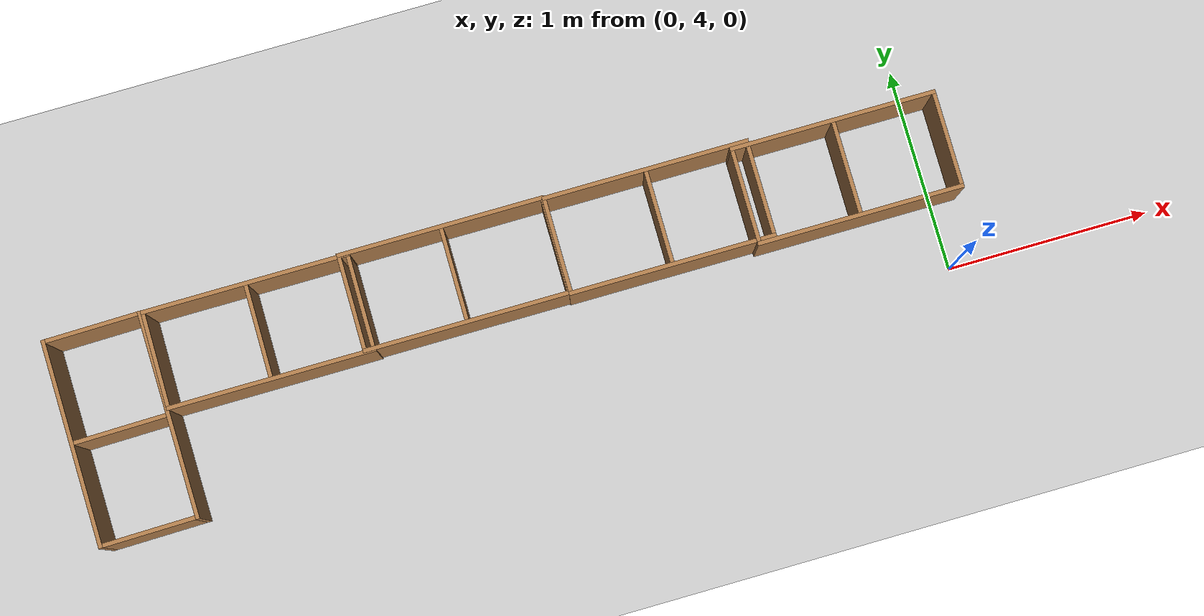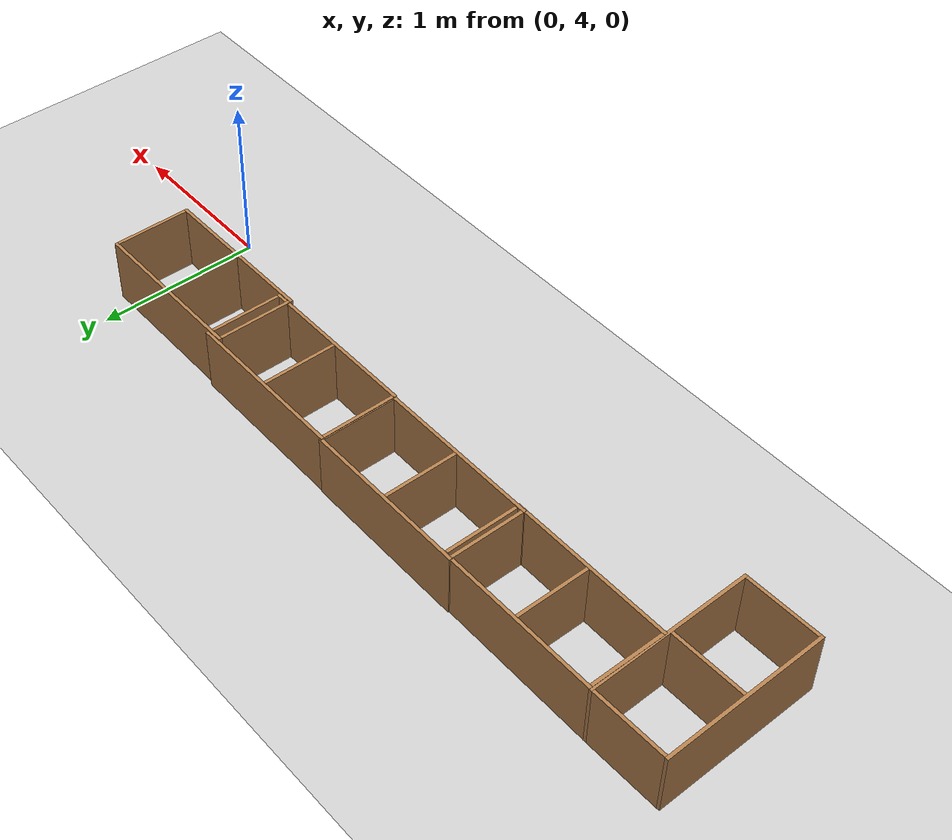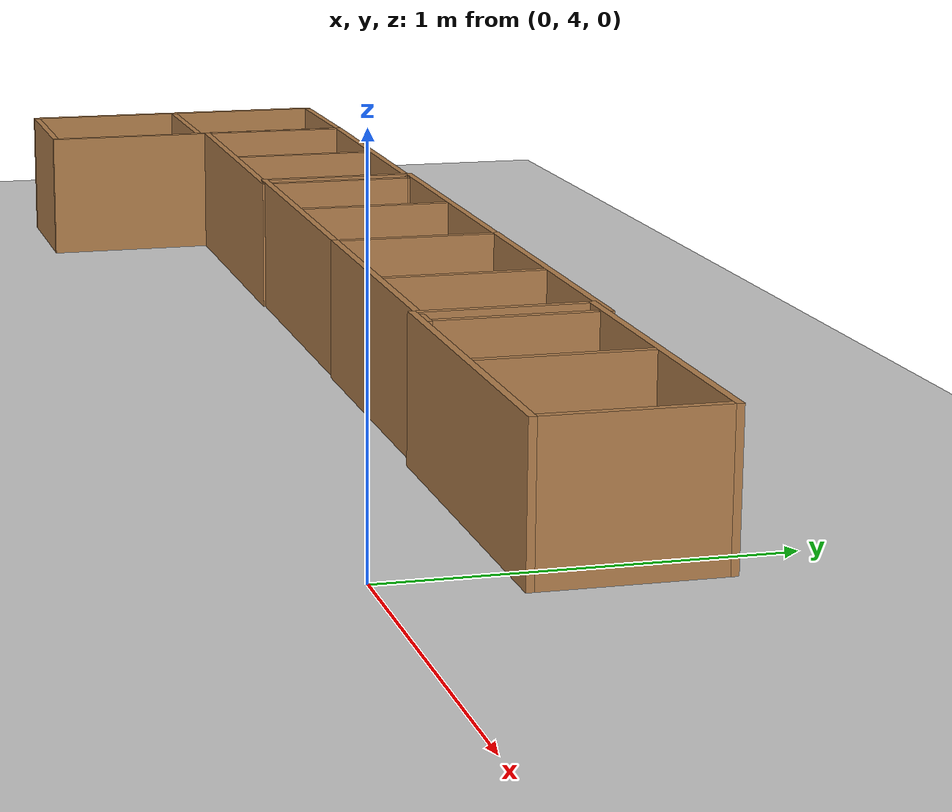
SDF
<sdf version="1.7">
 <world name="default">
  <model name="ground_plane">
   <static>1</static>
   <link name="link">
    <collision name="collision">
     <geometry><plane><normal>0 0 1</normal><size>100 100</size></plane></geometry>
     <surface>
      <contact><collide_bitmask>65535</collide_bitmask></contact>
      <friction><ode><mu>100</mu><mu2>50</mu2></ode></friction>
     </surface>
    </collision>
    <visual name="visual">
     <cast_shadows>0</cast_shadows>
     <geometry><plane><normal>0 0 1</normal><size>100 100</size></plane></geometry>
     <material>
      <script><uri>file://media/materials/scripts/gazebo.material</uri><name>Gazebo/Grey</name></script>
     </material>
    </visual>
   </link>
  </model>
  <model name="cabinet_clone_5_clone_4">
   <static>1</static>
   <link name="cabinet_bottom_plate">
    <inertial>
     <pose>0 0 -1 0 -0 0</pose>
     <inertia><ixx>2.05</ixx><ixy>0</ixy><ixz>0</ixz><iyy>2.05</iyy><iyz>0</iyz><izz>2.05</izz></inertia>
     <mass>25</mass>
    </inertial>
    <collision name="cabinet_bottom_plate_geom">
     <pose>0 0 0.01 0 -0 0</pose>
     <geometry><box><size>0.45 0.45 0.02</size></box></geometry>
    </collision>
    <visual name="cabinet_bottom_plate_geom_visual">
     <pose>0 0 0.01 0 -0 0</pose>
     <geometry><box><size>0.45 0.45 0.02</size></box></geometry>
     <material>
      <script><uri>file://media/materials/scripts/gazebo.material</uri><name>Gazebo/Wood</name></script>
     </material>
    </visual>
    <collision name="cabinet_bottom_plate_geom_cabinet_back_plate">
     <pose>0.235 0 0.51 0 -0 0</pose>
     <geometry><box><size>0.02 0.45 1.02</size></box></geometry>
    </collision>
    <visual name="cabinet_bottom_plate_geom_cabinet_back_plate_visual">
     <pose>0.235 0 0.51 0 -0 0</pose>
     <geometry><box><size>0.02 0.45 1.02</size></box></geometry>
     <material>
      <script><uri>file://media/materials/scripts/gazebo.material</uri><name>Gazebo/Wood</name></script>
     </material>
    </visual>
    <collision name="cabinet_bottom_plate_geom_cabinet_left_plate">
     <pose>0 0.235 0.51 0 -0 0</pose>
     <geometry><box><size>0.45 0.02 1.02</size></box></geometry>
    </collision>
    <visual name="cabinet_bottom_plate_geom_cabinet_left_plate_visual">
     <pose>0 0.235 0.51 0 -0 0</pose>
     <geometry><box><size>0.45 0.02 1.02</size></box></geometry>
     <material>
      <script><uri>file://media/materials/scripts/gazebo.material</uri><name>Gazebo/Wood</name></script>
     </material>
    </visual>
    <collision name="cabinet_bottom_plate_geom_cabinet_middle_plate">
     <pose>0 0 0.51 0 -0 0</pose>
     <geometry><box><size>0.45 0.45 0.02</size></box></geometry>
    </collision>
    <visual name="cabinet_bottom_plate_geom_cabinet_middle_plate_visual">
     <pose>0 0 0.51 0 -0 0</pose>
     <geometry><box><size>0.45 0.45 0.02</size></box></geometry>
     <material>
      <script><uri>file://media/materials/scripts/gazebo.material</uri><name>Gazebo/Wood</name></script>
     </material>
    </visual>
    <collision name="cabinet_bottom_plate_geom_cabinet_right_plate">
     <pose>0 -0.235 0.51 0 -0 0</pose>
     <geometry><box><size>0.45 0.02 1.02</size></box></geometry>
    </collision>
    <visual name="cabinet_bottom_plate_geom_cabinet_right_plate_visual">
     <pose>0 -0.235 0.51 0 -0 0</pose>
     <geometry><box><size>0.45 0.02 1.02</size></box></geometry>
     <material>
      <script><uri>file://media/materials/scripts/gazebo.material</uri><name>Gazebo/Wood</name></script>
     </material>
    </visual>
    <collision name="cabinet_bottom_plate_geom_cabinet_top_plate">
     <pose>0 0 1.01 0 -0 0</pose>
     <geometry><box><size>0.45 0.45 0.02</size></box></geometry>
    </collision>
    <visual name="cabinet_bottom_plate_geom_cabinet_top_plate_visual">
     <pose>0 0 1.01 0 -0 0</pose>
     <geometry><box><size>0.45 0.45 0.02</size></box></geometry>
     <material>
      <script><uri>file://media/materials/scripts/gazebo.material</uri><name>Gazebo/Wood</name></script>
     </material>
    </visual>
   </link>
   <pose>-4.00717 3.80501 0.169718 1.55548 1.5658 -3.14159</pose>
  </model>
  <model name="cabinet_clone_0_clone">
   <static>1</static>
   <link name="cabinet_bottom_plate">
    <inertial>
     <pose>0 0 -1 0 -0 0</pose>
     <inertia><ixx>2.05</ixx><ixy>0</ixy><ixz>0</ixz><iyy>2.05</iyy><iyz>0</iyz><izz>2.05</izz></inertia>
     <mass>25</mass>
    </inertial>
    <collision name="cabinet_bottom_plate_geom">
     <pose>0 0 0.01 0 -0 0</pose>
     <geometry><box><size>0.45 0.45 0.02</size></box></geometry>
    </collision>
    <visual name="cabinet_bottom_plate_geom_visual">
     <pose>0 0 0.01 0 -0 0</pose>
     <geometry><box><size>0.45 0.45 0.02</size></box></geometry>
     <material>
      <script><uri>file://media/materials/scripts/gazebo.material</uri><name>Gazebo/Wood</name></script>
     </material>
    </visual>
    <collision name="cabinet_bottom_plate_geom_cabinet_back_plate">
     <pose>0.235 0 0.51 0 -0 0</pose>
     <geometry><box><size>0.02 0.45 1.02</size></box></geometry>
    </collision>
    <visual name="cabinet_bottom_plate_geom_cabinet_back_plate_visual">
     <pose>0.235 0 0.51 0 -0 0</pose>
     <geometry><box><size>0.02 0.45 1.02</size></box></geometry>
     <material>
      <script><uri>file://media/materials/scripts/gazebo.material</uri><name>Gazebo/Wood</name></script>
     </material>
    </visual>
    <collision name="cabinet_bottom_plate_geom_cabinet_left_plate">
     <pose>0 0.235 0.51 0 -0 0</pose>
     <geometry><box><size>0.45 0.02 1.02</size></box></geometry>
    </collision>
    <visual name="cabinet_bottom_plate_geom_cabinet_left_plate_visual">
     <pose>0 0.235 0.51 0 -0 0</pose>
     <geometry><box><size>0.45 0.02 1.02</size></box></geometry>
     <material>
      <script><uri>file://media/materials/scripts/gazebo.material</uri><name>Gazebo/Wood</name></script>
     </material>
    </visual>
    <collision name="cabinet_bottom_plate_geom_cabinet_middle_plate">
     <pose>0 0 0.51 0 -0 0</pose>
     <geometry><box><size>0.45 0.45 0.02</size></box></geometry>
    </collision>
    <visual name="cabinet_bottom_plate_geom_cabinet_middle_plate_visual">
     <pose>0 0 0.51 0 -0 0</pose>
     <geometry><box><size>0.45 0.45 0.02</size></box></geometry>
     <material>
      <script><uri>file://media/materials/scripts/gazebo.material</uri><name>Gazebo/Wood</name></script>
     </material>
    </visual>
    <collision name="cabinet_bottom_plate_geom_cabinet_right_plate">
     <pose>0 -0.235 0.51 0 -0 0</pose>
     <geometry><box><size>0.45 0.02 1.02</size></box></geometry>
    </collision>
    <visual name="cabinet_bottom_plate_geom_cabinet_right_plate_visual">
     <pose>0 -0.235 0.51 0 -0 0</pose>
     <geometry><box><size>0.45 0.02 1.02</size></box></geometry>
     <material>
      <script><uri>file://media/materials/scripts/gazebo.material</uri><name>Gazebo/Wood</name></script>
     </material>
    </visual>
    <collision name="cabinet_bottom_plate_geom_cabinet_top_plate">
     <pose>0 0 1.01 0 -0 0</pose>
     <geometry><box><size>0.45 0.45 0.02</size></box></geometry>
    </collision>
    <visual name="cabinet_bottom_plate_geom_cabinet_top_plate_visual">
     <pose>0 0 1.01 0 -0 0</pose>
     <geometry><box><size>0.45 0.45 0.02</size></box></geometry>
     <material>
      <script><uri>file://media/materials/scripts/gazebo.material</uri><name>Gazebo/Wood</name></script>
     </material>
    </visual>
   </link>
   <pose>-3.78195 4.58272 0.169718 3.14159 1.5658 3.14159</pose>
  </model>
  <model name="cabinet_clone_0_clone_0">
   <static>1</static>
   <link name="cabinet_bottom_plate">
    <inertial>
     <pose>0 0 -1 0 -0 0</pose>
     <inertia><ixx>2.05</ixx><ixy>0</ixy><ixz>0</ixz><iyy>2.05</iyy><iyz>0</iyz><izz>2.05</izz></inertia>
     <mass>25</mass>
    </inertial>
    <collision name="cabinet_bottom_plate_geom">
     <pose>0 0 0.01 0 -0 0</pose>
     <geometry><box><size>0.45 0.45 0.02</size></box></geometry>
    </collision>
    <visual name="cabinet_bottom_plate_geom_visual">
     <pose>0 0 0.01 0 -0 0</pose>
     <geometry><box><size>0.45 0.45 0.02</size></box></geometry>
     <material>
      <script><uri>file://media/materials/scripts/gazebo.material</uri><name>Gazebo/Wood</name></script>
     </material>
    </visual>
    <collision name="cabinet_bottom_plate_geom_cabinet_back_plate">
     <pose>0.235 0 0.51 0 -0 0</pose>
     <geometry><box><size>0.02 0.45 1.02</size></box></geometry>
    </collision>
    <visual name="cabinet_bottom_plate_geom_cabinet_back_plate_visual">
     <pose>0.235 0 0.51 0 -0 0</pose>
     <geometry><box><size>0.02 0.45 1.02</size></box></geometry>
     <material>
      <script><uri>file://media/materials/scripts/gazebo.material</uri><name>Gazebo/Wood</name></script>
     </material>
    </visual>
    <collision name="cabinet_bottom_plate_geom_cabinet_left_plate">
     <pose>0 0.235 0.51 0 -0 0</pose>
     <geometry><box><size>0.45 0.02 1.02</size></box></geometry>
    </collision>
    <visual name="cabinet_bottom_plate_geom_cabinet_left_plate_visual">
     <pose>0 0.235 0.51 0 -0 0</pose>
     <geometry><box><size>0.45 0.02 1.02</size></box></geometry>
     <material>
      <script><uri>file://media/materials/scripts/gazebo.material</uri><name>Gazebo/Wood</name></script>
     </material>
    </visual>
    <collision name="cabinet_bottom_plate_geom_cabinet_middle_plate">
     <pose>0 0 0.51 0 -0 0</pose>
     <geometry><box><size>0.45 0.45 0.02</size></box></geometry>
    </collision>
    <visual name="cabinet_bottom_plate_geom_cabinet_middle_plate_visual">
     <pose>0 0 0.51 0 -0 0</pose>
     <geometry><box><size>0.45 0.45 0.02</size></box></geometry>
     <material>
      <script><uri>file://media/materials/scripts/gazebo.material</uri><name>Gazebo/Wood</name></script>
     </material>
    </visual>
    <collision name="cabinet_bottom_plate_geom_cabinet_right_plate">
     <pose>0 -0.235 0.51 0 -0 0</pose>
     <geometry><box><size>0.45 0.02 1.02</size></box></geometry>
    </collision>
    <visual name="cabinet_bottom_plate_geom_cabinet_right_plate_visual">
     <pose>0 -0.235 0.51 0 -0 0</pose>
     <geometry><box><size>0.45 0.02 1.02</size></box></geometry>
     <material>
      <script><uri>file://media/materials/scripts/gazebo.material</uri><name>Gazebo/Wood</name></script>
     </material>
    </visual>
    <collision name="cabinet_bottom_plate_geom_cabinet_top_plate">
     <pose>0 0 1.01 0 -0 0</pose>
     <geometry><box><size>0.45 0.45 0.02</size></box></geometry>
    </collision>
    <visual name="cabinet_bottom_plate_geom_cabinet_top_plate_visual">
     <pose>0 0 1.01 0 -0 0</pose>
     <geometry><box><size>0.45 0.45 0.02</size></box></geometry>
     <material>
      <script><uri>file://media/materials/scripts/gazebo.material</uri><name>Gazebo/Wood</name></script>
     </material>
    </visual>
   </link>
   <pose>-2.8238 4.58892 0.169718 3.14159 1.5658 3.14159</pose>
  </model>
  <model name="cabinet_clone_0_clone_1">
   <static>1</static>
   <link name="cabinet_bottom_plate">
    <inertial>
     <pose>0 0 -1 0 -0 0</pose>
     <inertia><ixx>2.05</ixx><ixy>0</ixy><ixz>0</ixz><iyy>2.05</iyy><iyz>0</iyz><izz>2.05</izz></inertia>
     <mass>25</mass>
    </inertial>
    <collision name="cabinet_bottom_plate_geom">
     <pose>0 0 0.01 0 -0 0</pose>
     <geometry><box><size>0.45 0.45 0.02</size></box></geometry>
    </collision>
    <visual name="cabinet_bottom_plate_geom_visual">
     <pose>0 0 0.01 0 -0 0</pose>
     <geometry><box><size>0.45 0.45 0.02</size></box></geometry>
     <material>
      <script><uri>file://media/materials/scripts/gazebo.material</uri><name>Gazebo/Wood</name></script>
     </material>
    </visual>
    <collision name="cabinet_bottom_plate_geom_cabinet_back_plate">
     <pose>0.235 0 0.51 0 -0 0</pose>
     <geometry><box><size>0.02 0.45 1.02</size></box></geometry>
    </collision>
    <visual name="cabinet_bottom_plate_geom_cabinet_back_plate_visual">
     <pose>0.235 0 0.51 0 -0 0</pose>
     <geometry><box><size>0.02 0.45 1.02</size></box></geometry>
     <material>
      <script><uri>file://media/materials/scripts/gazebo.material</uri><name>Gazebo/Wood</name></script>
     </material>
    </visual>
    <collision name="cabinet_bottom_plate_geom_cabinet_left_plate">
     <pose>0 0.235 0.51 0 -0 0</pose>
     <geometry><box><size>0.45 0.02 1.02</size></box></geometry>
    </collision>
    <visual name="cabinet_bottom_plate_geom_cabinet_left_plate_visual">
     <pose>0 0.235 0.51 0 -0 0</pose>
     <geometry><box><size>0.45 0.02 1.02</size></box></geometry>
     <material>
      <script><uri>file://media/materials/scripts/gazebo.material</uri><name>Gazebo/Wood</name></script>
     </material>
    </visual>
    <collision name="cabinet_bottom_plate_geom_cabinet_middle_plate">
     <pose>0 0 0.51 0 -0 0</pose>
     <geometry><box><size>0.45 0.45 0.02</size></box></geometry>
    </collision>
    <visual name="cabinet_bottom_plate_geom_cabinet_middle_plate_visual">
     <pose>0 0 0.51 0 -0 0</pose>
     <geometry><box><size>0.45 0.45 0.02</size></box></geometry>
     <material>
      <script><uri>file://media/materials/scripts/gazebo.material</uri><name>Gazebo/Wood</name></script>
     </material>
    </visual>
    <collision name="cabinet_bottom_plate_geom_cabinet_right_plate">
     <pose>0 -0.235 0.51 0 -0 0</pose>
     <geometry><box><size>0.45 0.02 1.02</size></box></geometry>
    </collision>
    <visual name="cabinet_bottom_plate_geom_cabinet_right_plate_visual">
     <pose>0 -0.235 0.51 0 -0 0</pose>
     <geometry><box><size>0.45 0.02 1.02</size></box></geometry>
     <material>
      <script><uri>file://media/materials/scripts/gazebo.material</uri><name>Gazebo/Wood</name></script>
     </material>
    </visual>
    <collision name="cabinet_bottom_plate_geom_cabinet_top_plate">
     <pose>0 0 1.01 0 -0 0</pose>
     <geometry><box><size>0.45 0.45 0.02</size></box></geometry>
    </collision>
    <visual name="cabinet_bottom_plate_geom_cabinet_top_plate_visual">
     <pose>0 0 1.01 0 -0 0</pose>
     <geometry><box><size>0.45 0.45 0.02</size></box></geometry>
     <material>
      <script><uri>file://media/materials/scripts/gazebo.material</uri><name>Gazebo/Wood</name></script>
     </material>
    </visual>
   </link>
   <pose>-1.81752 4.58333 0.169718 3.14159 1.5658 3.14159</pose>
  </model>
  <model name="cabinet_clone_0_clone_2">
   <static>1</static>
   <link name="cabinet_bottom_plate">
    <inertial>
     <pose>0 0 -1 0 -0 0</pose>
     <inertia><ixx>2.05</ixx><ixy>0</ixy><ixz>0</ixz><iyy>2.05</iyy><iyz>0</iyz><izz>2.05</izz></inertia>
     <mass>25</mass>
    </inertial>
    <collision name="cabinet_bottom_plate_geom">
     <pose>0 0 0.01 0 -0 0</pose>
     <geometry><box><size>0.45 0.45 0.02</size></box></geometry>
    </collision>
    <visual name="cabinet_bottom_plate_geom_visual">
     <pose>0 0 0.01 0 -0 0</pose>
     <geometry><box><size>0.45 0.45 0.02</size></box></geometry>
     <material>
      <script><uri>file://media/materials/scripts/gazebo.material</uri><name>Gazebo/Wood</name></script>
     </material>
    </visual>
    <collision name="cabinet_bottom_plate_geom_cabinet_back_plate">
     <pose>0.235 0 0.51 0 -0 0</pose>
     <geometry><box><size>0.02 0.45 1.02</size></box></geometry>
    </collision>
    <visual name="cabinet_bottom_plate_geom_cabinet_back_plate_visual">
     <pose>0.235 0 0.51 0 -0 0</pose>
     <geometry><box><size>0.02 0.45 1.02</size></box></geometry>
     <material>
      <script><uri>file://media/materials/scripts/gazebo.material</uri><name>Gazebo/Wood</name></script>
     </material>
    </visual>
    <collision name="cabinet_bottom_plate_geom_cabinet_left_plate">
     <pose>0 0.235 0.51 0 -0 0</pose>
     <geometry><box><size>0.45 0.02 1.02</size></box></geometry>
    </collision>
    <visual name="cabinet_bottom_plate_geom_cabinet_left_plate_visual">
     <pose>0 0.235 0.51 0 -0 0</pose>
     <geometry><box><size>0.45 0.02 1.02</size></box></geometry>
     <material>
      <script><uri>file://media/materials/scripts/gazebo.material</uri><name>Gazebo/Wood</name></script>
     </material>
    </visual>
    <collision name="cabinet_bottom_plate_geom_cabinet_middle_plate">
     <pose>0 0 0.51 0 -0 0</pose>
     <geometry><box><size>0.45 0.45 0.02</size></box></geometry>
    </collision>
    <visual name="cabinet_bottom_plate_geom_cabinet_middle_plate_visual">
     <pose>0 0 0.51 0 -0 0</pose>
     <geometry><box><size>0.45 0.45 0.02</size></box></geometry>
     <material>
      <script><uri>file://media/materials/scripts/gazebo.material</uri><name>Gazebo/Wood</name></script>
     </material>
    </visual>
    <collision name="cabinet_bottom_plate_geom_cabinet_right_plate">
     <pose>0 -0.235 0.51 0 -0 0</pose>
     <geometry><box><size>0.45 0.02 1.02</size></box></geometry>
    </collision>
    <visual name="cabinet_bottom_plate_geom_cabinet_right_plate_visual">
     <pose>0 -0.235 0.51 0 -0 0</pose>
     <geometry><box><size>0.45 0.02 1.02</size></box></geometry>
     <material>
      <script><uri>file://media/materials/scripts/gazebo.material</uri><name>Gazebo/Wood</name></script>
     </material>
    </visual>
    <collision name="cabinet_bottom_plate_geom_cabinet_top_plate">
     <pose>0 0 1.01 0 -0 0</pose>
     <geometry><box><size>0.45 0.45 0.02</size></box></geometry>
    </collision>
    <visual name="cabinet_bottom_plate_geom_cabinet_top_plate_visual">
     <pose>0 0 1.01 0 -0 0</pose>
     <geometry><box><size>0.45 0.45 0.02</size></box></geometry>
     <material>
      <script><uri>file://media/materials/scripts/gazebo.material</uri><name>Gazebo/Wood</name></script>
     </material>
    </visual>
   </link>
   <pose>-0.895871 4.56495 0.169718 3.14159 1.5658 3.14159</pose>
  </model>
 </world>
</sdf>
